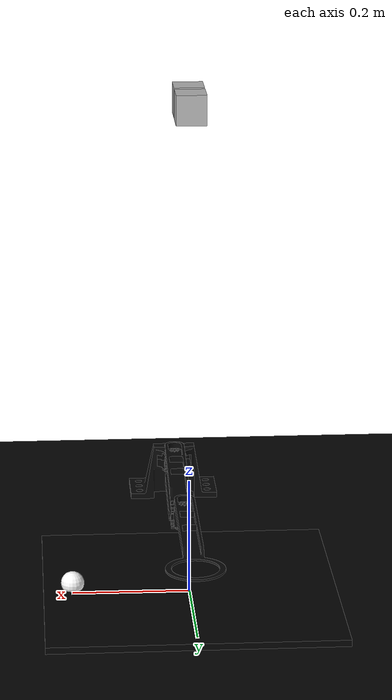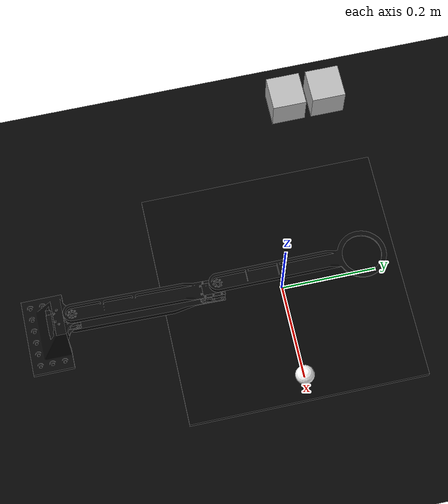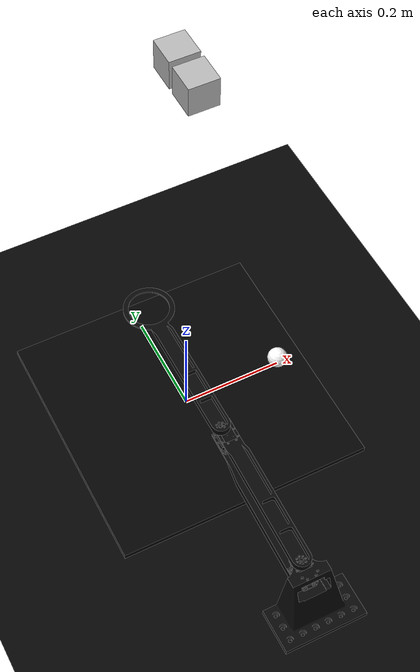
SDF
<?xml version="1.0" ?>
<sdf version="1.8">
  <world name="world_demo">

    <!-- SDF file with model linked to world -->
    <physics name="1ms" type="ignored">
      <max_step_size>0.001</max_step_size>
      <real_time_factor>1.0</real_time_factor>
    </physics>
    <plugin
      filename="ignition-gazebo-physics-system"
      name="ignition::gazebo::systems::Physics">
      <update_rate>1000.0</update_rate>
      <real_time_factor>1.0</real_time_factor>
    </plugin>

    <plugin
      filename="gz-sim-user-commands-system"
      name="gz::sim::systems::UserCommands">
    </plugin>
    <plugin
      filename="gz-sim-scene-broadcaster-system"
      name="gz::sim::systems::SceneBroadcaster">
    </plugin>
    <plugin
      filename="ignition-gazebo-sensors-system"
      name="ignition::gazebo::systems::Sensors">
      <render_engine>ogre2</render_engine>
    </plugin>

    <plugin
      filename="ignition-gazebo-apply-link-wrench-system"
      name="ignition::gazebo::systems::ApplyLinkWrench">
      <persistent>
        <entity_name>ping_pong_ball::ping_pong_ball_link</entity_name>
        <entity_type>link</entity_type>
        <force>0 0 0</force>
        <torque>0 0 0</torque>
      </persistent>
    </plugin>

    <plugin filename="ignition-gazebo-contact-system"
      name="ignition::gazebo::systems::Contact">
    </plugin>

    <gui fullscreen="0">
      <!-- 3D scene -->
      <plugin filename="MinimalScene" name="3D View">
        <ignition-gui>
          <title>3D View</title>
          <property type="bool" key="showTitleBar">false</property>
          <property type="string" key="state">docked</property>
        </ignition-gui>

        <engine>ogre2</engine>
        <scene>scene</scene>
        <ambient_light>0.4 0.4 0.4</ambient_light>
        <background_color>0.8 0.8 0.8</background_color>
        <camera_pose>-1 0 1 0 0.5 0</camera_pose>
      </plugin>

      <!-- Plugins that add functionality to the scene -->
      <plugin filename="EntityContextMenuPlugin" name="Entity context menu">
        <ignition-gui>
          <property key="state" type="string">floating</property>
          <property key="width" type="double">5</property>
          <property key="height" type="double">5</property>
          <property key="showTitleBar" type="bool">false</property>
        </ignition-gui>
      </plugin>
      <plugin filename="GzSceneManager" name="Scene Manager">
        <ignition-gui>
          <property key="resizable" type="bool">false</property>
          <property key="width" type="double">5</property>
          <property key="height" type="double">5</property>
          <property key="state" type="string">floating</property>
          <property key="showTitleBar" type="bool">false</property>
        </ignition-gui>
      </plugin>
      <plugin filename="InteractiveViewControl" name="Interactive view control">
        <ignition-gui>
          <property key="resizable" type="bool">false</property>
          <property key="width" type="double">5</property>
          <property key="height" type="double">5</property>
          <property key="state" type="string">floating</property>
          <property key="showTitleBar" type="bool">false</property>
        </ignition-gui>
      </plugin>
      <plugin filename="CameraTracking" name="Camera Tracking">
        <ignition-gui>
          <property key="resizable" type="bool">false</property>
          <property key="width" type="double">5</property>
          <property key="height" type="double">5</property>
          <property key="state" type="string">floating</property>
          <property key="showTitleBar" type="bool">false</property>
        </ignition-gui>
      </plugin>
      <!-- World control -->
      <plugin filename="WorldControl" name="World control">
        <ignition-gui>
          <title>World control</title>
          <property type="bool" key="showTitleBar">false</property>
          <property type="bool" key="resizable">false</property>
          <property type="double" key="height">72</property>
          <property type="double" key="width">121</property>
          <property type="double" key="z">1</property>

          <property type="string" key="state">floating</property>
          <anchors target="3D View">
            <line own="left" target="left"/>
            <line own="bottom" target="bottom"/>
          </anchors>
        </ignition-gui>

        <play_pause>true</play_pause>
        <step>true</step>
        <start_paused>true</start_paused>
        <use_event>true</use_event>

      </plugin>

      <!-- World statistics -->
      <plugin filename="WorldStats" name="World stats">
        <ignition-gui>
          <title>World stats</title>
          <property type="bool" key="showTitleBar">false</property>
          <property type="bool" key="resizable">false</property>
          <property type="double" key="height">110</property>
          <property type="double" key="width">290</property>
          <property type="double" key="z">1</property>

          <property type="string" key="state">floating</property>
          <anchors target="3D View">
            <line own="right" target="right"/>
            <line own="bottom" target="bottom"/>
          </anchors>
        </ignition-gui>

        <sim_time>true</sim_time>
        <real_time>true</real_time>
        <real_time_factor>true</real_time_factor>
        <iterations>true</iterations>
      </plugin>

      <!-- Displays output of the camera sensor from topics -->
      <plugin filename="ImageDisplay" name="left_camera">
        <topic>/camera/left_image_raw</topic>
        <topic_picker>0</topic_picker>
        <ignition-gui>
          <title>Camera Feed</title>
          <property key="state" type="string">floating</property>
          <property type="double" key="height">320</property>
          <property type="double" key="width">320</property>
          <property type="double" key="x">1</property>
          <property type="double" key="y">1</property>
          <property type="double" key="z">1</property>
        </ignition-gui>
      </plugin>

      <plugin filename="ImageDisplay" name="right_camera">
        <topic>/camera/right_image_raw</topic>
        <topic_picker>0</topic_picker>
        <ignition-gui>
          <title>Right Camera Feed</title>
          <property key="state" type="string">floating</property>
          <property type="double" key="height">320</property>
          <property type="double" key="width">320</property>
          <property type="double" key="x">350</property>
          <property type="double" key="y">1</property>
          <property type="double" key="z">1</property>
        </ignition-gui>
      </plugin>

      <!-- Inspector -->
      <plugin filename="ComponentInspector" name="Component inspector">
        <ignition-gui>
          <property type="string" key="state">docked</property>
        </ignition-gui>
      </plugin>

      <!-- Entity tree -->
      <plugin filename="EntityTree" name="Entity tree">
        <ignition-gui>
          <property type="string" key="state">docked</property>
        </ignition-gui>
      </plugin>
    </gui>

    <!--light-->
    <light type="directional" name="sun">
      <cast_shadows>false</cast_shadows>
      <pose>0 0 10 0 0 0</pose>
      <diffuse>0.8 0.8 0.8 1</diffuse>
      <specular>0.2 0.2 0.2 1</specular>
      <attenuation>
        <range>1000</range>
        <constant>0.9</constant>
        <linear>0.01</linear>
        <quadratic>0.001</quadratic>
      </attenuation>
      <direction>-0.5 0.1 -0.9</direction>
    </light>

    <!-- Adding simulation elements -->
    <model name="workspace_setup">
      <link name="ground">
        <collision name='ground_collision'>
          <pose>0 0 0 0 0 0</pose>
          <geometry>
            <plane>
              <size>100 100</size>
            </plane>
          </geometry>
        </collision>
        <visual name = 'ground_visual'>
          <pose>0 0 0 0 0 0</pose>
          <geometry>
            <plane>
              <size>100 100</size>
            </plane>
          </geometry>
          <material>
            <diffuse>0.02 0.02 0.02 1</diffuse>
            <ambient>0.02 0.02 0.02 1</ambient>
        </material>
        </visual>
      </link>
      <joint name="world_fixed" type="fixed">
        <parent>world</parent>
        <child>ground</child>
      </joint>

      <!-- Visualization for workspace boundaries -->
      <link name="workspace">
        <collision name='workspace_collision'>
          <pose>0 0 0 0 0 0</pose>
          <geometry>
            <box>
              <size>0.23 0.23 0.02</size>
            </box>
          </geometry>
        </collision>
        <visual name = 'workspace_visual'>
          <pose>0 0 0 0 0 0</pose>
          <geometry>
            <box>
              <size>0.5 0.5 0.02</size>
            </box>
          </geometry>
          <material>
            <diffuse>0.01 0.01 0.01 1</diffuse>
            <ambient>0.01 0.01 0.01 1</ambient>
        </material>
        </visual>
      </link>
      <joint name="workspace_fixed" type="fixed">
        <parent>ground</parent>
        <child>workspace</child>
      </joint>

      <link name='left_camera'>
       <pose>0 0.03 0.85 0 1.57 0</pose>
       <inertial>
         <mass>1e-10</mass>
       </inertial>
       <visual name='left_camera_visual'>
         <geometry>
           <box>
             <size>0.05 0.05 0.05</size>
           </box>
         </geometry>
       </visual>
       <sensor name="camera" type="camera">
         <always_on>1</always_on>
         <visualize>true</visualize>
         <update_rate>120</update_rate>
         <topic>/camera/left_image_raw</topic>
         <gz_frame_id>camera_rgb_frame</gz_frame_id>
         <camera name="intel_realsense_r200">
           <horizontal_fov>0.8</horizontal_fov>
           <camera_info_topic>/camera/left_camera_info</camera_info_topic>
           <image>
            <width>320</width>
            <height>240</height>
           </image>
         </camera>
       </sensor>
      </link>
      <joint name="left_camera_fixed" type="fixed">
        <parent>ground</parent>
        <child>left_camera</child>
      </joint>

      <link name='right_camera'>
       <pose>0 -0.03 0.85 0 1.57 0</pose>
       <inertial>
         <mass>1e-10</mass>
       </inertial>
       <visual name='right_camera_visual'>
         <geometry>
           <box>
             <size>0.05 0.05 0.05</size>
           </box>
         </geometry>
       </visual>
       <sensor name="camera" type="camera">
         <always_on>1</always_on>
         <visualize>true</visualize>
         <update_rate>120</update_rate>
         <topic>/camera/right_image_raw</topic>
         <gz_frame_id>camera_rgb_frame</gz_frame_id>
         <camera name="intel_realsense_r200">
           <horizontal_fov>0.8</horizontal_fov>
           <camera_info_topic>/camera/right_camera_info</camera_info_topic>
           <image>
            <width>320</width>
            <height>240</height>
           </image>
         </camera>
       </sensor>
      </link>
      <joint name="right_camera_fixed" type="fixed">
        <parent>ground</parent>
        <child>right_camera</child>
      </joint>

      <!-- Insert the robotic arm model -->
      <include>
        <uri>file://src/robot_desc/TrueRobot/TrueRobot.sdf</uri>
        <pose>0 -0.53926 0 0 0 0</pose>
      </include>

      <joint name="base_fixed" type="fixed">
        <parent>ground</parent>
        <child>project_robot::armbasemount</child>
      </joint>

      <!-- Insert the ping pong ball model -->
      <include>
        <uri>file://src/robot_desc/simWorld/ball.sdf</uri>
        <pose>0.2 0 0.02 0 0 0</pose>
      </include>

    </model>

  </world>
</sdf>

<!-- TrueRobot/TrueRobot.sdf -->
<sdf version='1.9'>
  <model name='project_robot'>
    <link name='armbasemount'>
      <inertial>
        <pose>6.251875546689009e-06 0.06186406951293352 0.0428628931354464 0 0 0</pose>
        <mass>0.29051270000000001</mass>
        <inertia>
          <ixx>0.00055875421740281869</ixx>
          <ixy>-3.4062005332006259e-08</ixy>
          <ixz>-7.3112193284978159e-08</ixz>
          <iyy>0.0006971616844175366</iyy>
          <iyz>-0.00020423169635380809</iyz>
          <izz>0.00059518919063912654</izz>
        </inertia>
      </inertial>
      <collision name='armbasemount_collision'>
        <pose>0 0.1156 0.06 1.5708 0 -1.5708</pose>
        <geometry>
          <mesh>
            <scale>1 1 1</scale>
            <uri>package://robot_desc/TrueRobot/assets/armbasemount.stl</uri>
          </mesh>
        </geometry>
      </collision>
      <collision name='armbasemount_fixed_joint_lump__dynamixelmotor_withhorn_collision_1'>
        <pose>6.372530999999999e-34 0.1036 0.07803 8.57655e-33 -1.2326e-32 0</pose>
        <geometry>
          <mesh>
            <scale>1 1 1</scale>
            <uri>package://robot_desc/TrueRobot/assets/dynamixelmotor_withhorn.stl</uri>
          </mesh>
        </geometry>
      </collision>
      <visual name='armbasemount_visual'>
        <pose>0 0.1156 0.06 1.5708 0 -1.5708</pose>
        <geometry>
          <mesh>
            <scale>1 1 1</scale>
            <uri>package://robot_desc/TrueRobot/assets/armbasemount.stl</uri>
          </mesh>
        </geometry>
        <material>
          <diffuse>0.03 0.03 0.03 1</diffuse>
          <ambient>0.03 0.03 0.03 1</ambient>
        </material>
      </visual>
      <visual name='armbasemount_fixed_joint_lump__dynamixelmotor_withhorn_visual_1'>
        <pose>6.372530999999999e-34 0.1036 0.07803 8.57655e-33 -1.2326e-32 0</pose>
        <geometry>
          <mesh>
            <scale>1 1 1</scale>
            <uri>package://robot_desc/TrueRobot/assets/dynamixelmotor_withhorn.stl</uri>
          </mesh>
        </geometry>
        <material>
          <diffuse>0.03 0.03 0.03 1</diffuse>
          <ambient>0.03 0.03 0.03 1</ambient>
        </material>
      </visual>
    </link>
    <joint name='shoulder' type='revolute'>
      <pose relative_to='armbasemount'>3.845701e-34 0.1036 0.09853000000000001 3.14159 -1.2326e-32 0</pose>
      <parent>armbasemount</parent>
      <child>shoulderlink</child>
      <axis>
        <xyz>0 0 -1</xyz>
        <limit>
          <lower>-1.5708</lower>
          <upper>1.5708</upper>
          <effort>1000</effort>
          <velocity>10000</velocity>
        </limit>
        <dynamics>
          <damping>0.0</damping>      <!-- Explicitly set -->
          <friction>0.0</friction>
          <spring_reference>0</spring_reference>
          <spring_stiffness>0</spring_stiffness>
        </dynamics>
      </axis>
    </joint>
    <link name='shoulderlink'>
      <pose relative_to='shoulder'>0 0 0 0 0 0</pose>
      <inertial>
        <pose>0.003645512018805132 -0.1863316300059878 0.01986712454381451 0 0 0</pose>
        <mass>0.20337669999999999</mass>
        <inertia>
          <ixx>0.0022488945478882989</ixx>
          <ixy>4.1720371291662997e-05</ixy>
          <ixz>1.6568543822297811e-06</ixz>
          <iyy>0.0001204273050543394</iyy>
          <iyz>-8.3976955029445538e-05</iyz>
          <izz>0.0021781180081586961</izz>
        </inertia>
      </inertial>
      <collision name='shoulderlink_collision'>
        <pose>0.00351367 -0.169801 4.16334e-17 -3.14159 -2.117582368135751e-22 -1.55128</pose>
        <geometry>
          <mesh>
            <scale>1 1 1</scale>
            <uri>package://robot_desc/TrueRobot/assets/combinedshoulder.stl</uri>
          </mesh>
        </geometry>
      </collision>
      <collision name='shoulderlink_collision_1'>
        <pose>0.00351367 -0.169801 4.16334e-17 -3.14159 -2.117582368135751e-22 -1.55128</pose>
        <geometry>
          <mesh>
            <scale>1 1 1</scale>
            <uri>package://robot_desc/TrueRobot/assets/bottomshoulderlink.stl</uri>
          </mesh>
        </geometry>
      </collision>
      <collision name='shoulderlink_fixed_joint_lump__dynamixelmotor_withhorn_2_collision_2'>
        <pose>0.00581549619397911 -0.297943249636601 0.015 3.14159 -1.323488980084844e-23 0.01952000000000008</pose>
        <geometry>
          <mesh>
            <scale>1 1 1</scale>
            <uri>package://robot_desc/TrueRobot/assets/dynamixelmotor_withhorn.stl</uri>
          </mesh>
        </geometry>
      </collision>
      <visual name='shoulderlink_visual'>
        <pose>0.00351367 -0.169801 4.16334e-17 -3.14159 -2.117582368135751e-22 -1.55128</pose>
        <geometry>
          <mesh>
            <scale>1 1 1</scale>
            <uri>package://robot_desc/TrueRobot/assets/combinedshoulder.stl</uri>
          </mesh>
        </geometry>
        <material>
          <diffuse>0.03 0.03 0.03 1</diffuse>
          <ambient>0.03 0.03 0.03 1</ambient>
        </material>
      </visual>
      <visual name='shoulderlink_visual_1'>
        <pose>0.00351367 -0.169801 4.16334e-17 -3.14159 -2.117582368135751e-22 -1.55128</pose>
        <geometry>
          <mesh>
            <scale>1 1 1</scale>
            <uri>package://robot_desc/TrueRobot/assets/bottomshoulderlink.stl</uri>
          </mesh>
        </geometry>
        <material>
          <diffuse>0.03 0.03 0.03 1</diffuse>
          <ambient>0.03 0.03 0.03 1</ambient>
        </material>
      </visual>
      <visual name='shoulderlink_fixed_joint_lump__dynamixelmotor_withhorn_2_visual_2'>
        <pose>0.00581549619397911 -0.297943249636601 0.015 3.14159 -1.323488980084844e-23 0.01952000000000008</pose>
        <geometry>
          <mesh>
            <scale>1 1 1</scale>
            <uri>package://robot_desc/TrueRobot/assets/dynamixelmotor_withhorn.stl</uri>
          </mesh>
        </geometry>
        <material>
          <diffuse>0.03 0.03 0.03 1</diffuse>
          <ambient>0.03 0.03 0.03 1</ambient>
        </material>
      </visual>
    </link>
    <joint name='elbow' type='revolute'>
      <pose relative_to='shoulderlink'>-1.094615120878888e-06 -0.2979999999979897 -0.0055 3.14159 0 -1.5708</pose>
      <parent>shoulderlink</parent>
      <child>hooplink</child>
      <axis>
        <xyz>0 0 1</xyz>
        <limit>
          <lower>-2.2939099999999999</lower>
          <upper>2.2939099999999999</upper>
          <effort>1000</effort>
          <velocity>10000</velocity>
        </limit>
        <dynamics>
          <damping>0.0</damping>      <!-- Explicitly set -->
          <friction>0.0</friction>
          <spring_reference>0</spring_reference>
          <spring_stiffness>0</spring_stiffness>
        </dynamics>
      </axis>
    </joint>
    <link name='hooplink'>
      <pose relative_to='elbow'>0 0 0 0 0 0</pose>
      <inertial>
        <pose>0.1358200027684566 -2.364220297380264e-05 0.004826469969201467 0 0 0</pose>
        <mass>0.059303801000000003</mass>
        <inertia>
          <ixx>1.682160000336709e-05</ixx>
          <ixy>2.321110289544231e-07</ixy>
          <ixz>5.9135702998698312e-06</ixz>
          <iyy>0.00052000702695840844</iyy>
          <iyz>-4.6639603221122238e-09</iyz>
          <izz>0.00053478302695510313</izz>
        </inertia>
      </inertial>
      <collision name='hooplink_collision'>
        <pose>0.169838 0.1698 0 0 2.18953e-47 1.73472e-18</pose>
        <geometry>
          <mesh>
            <scale>1 1 1</scale>
            <uri>package://robot_desc/TrueRobot/assets/hooplink.stl</uri>
          </mesh>
        </geometry>
      </collision>
      <visual name='hooplink_visual'>
        <pose>0.169838 0.1698 0 0 2.18953e-47 1.73472e-18</pose>
        <geometry>
          <mesh>
            <scale>1 1 1</scale>
            <uri>package://robot_desc/TrueRobot/assets/hooplink.stl</uri>
          </mesh>
        </geometry>
        <material>
          <diffuse>0.03 0.03 0.03 1</diffuse>
          <ambient>0.03 0.03 0.03 1</ambient>
        </material>
      </visual>
    </link>
    <frame name='shouldermotor' attached_to='armbasemount'>
      <pose>0 0.1036 0.10388 0 -0 0</pose>
    </frame>
    <frame name='dynamixelmotor_withhorn' attached_to='shouldermotor'/>
    <frame name='elbowmotor' attached_to='shoulderlink'>
      <pose>0 -0 -0.003 0 -0 -1.55128</pose>
    </frame>
    <frame name='dynamixelmotor_withhorn_2' attached_to='elbowmotor'/>
    <frame name='EEframe_frame' attached_to='hooplink'>
      <pose>0.3 -0.0002 0.003 0 0 0</pose>
    </frame>
    <frame name='EEframe' attached_to='EEframe_frame'/>

    <!-- Plug-in for velocity control -->
    <plugin
      filename="gz-sim-joint-controller-system"
      name="gz::sim::systems::JointController">
      <joint_name>shoulder</joint_name>
      <topic>velS</topic>
      <p_gain>1</p_gain>
      <i_gain>0</i_gain>
      <d_gain>0</d_gain>
      <initial_velocity>0</initial_velocity>
    </plugin>

    <plugin
      filename="gz-sim-joint-controller-system"
      name="gz::sim::systems::JointController">
      <joint_name>elbow</joint_name>
      <topic>velE</topic>
      <p_gain>1</p_gain>
      <i_gain>0</i_gain>
      <d_gain>0</d_gain>
      <initial_velocity>0</initial_velocity>
    </plugin>

    <!-- Plug in for joint reading -->
    <plugin
      filename="gz-sim-joint-state-publisher-system"
      name="gz::sim::systems::JointStatePublisher">
      <topic>joint_state</topic>
      <joint_name>shoulder</joint_name>
      <joint_name>elbow</joint_name>
      <update_rate>20</update_rate>
    </plugin>

  </model>
</sdf>

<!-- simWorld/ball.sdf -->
<sdf version="1.8">
  <model name="ping_pong_ball">
    <link name="ping_pong_ball_link">
      <visual  name='ball_visual'>
        <geometry>
          <sphere>
            <radius>0.02</radius> <!-- Radius in meters.  Ping pong ball is approximately 2cm (0.02 meters) diameter -->
          </sphere>
        </geometry>
        <material>
            <diffuse>1 1 1 1</diffuse>
            <ambient>1 1 1 1</ambient>
        </material>
      </visual>
      <collision  name='ball_collision'>
        <geometry>
          <sphere>
            <radius>0.02</radius> <!-- Radius in meters -->
          </sphere>
        </geometry>
      </collision>
      <inertial>
        <mass>0.0025</mass> <!-- Approximate mass (grams converted to kilograms) -->
        <inertia>
          <ixx>0.000001</ixx>
          <iyy>0.000001</iyy>
          <izz>0.000001</izz>
        </inertia>
      </inertial>
    </link>
  </model>
</sdf>
